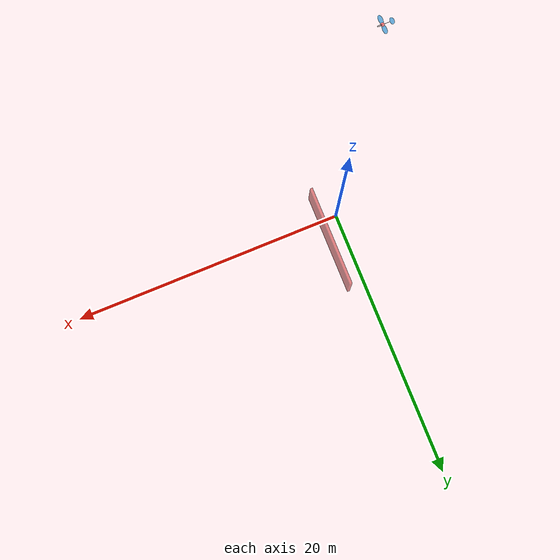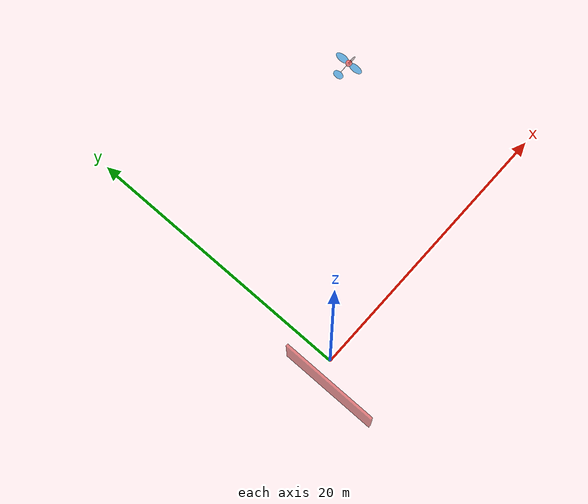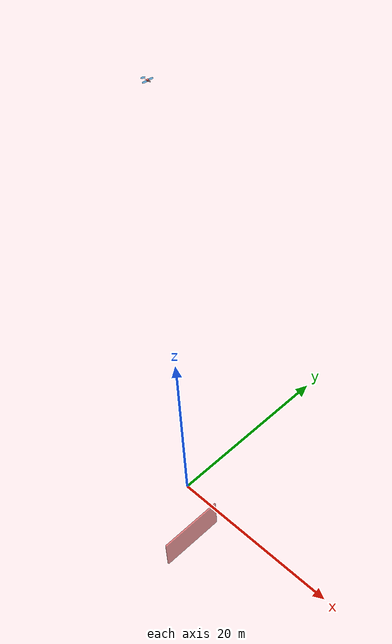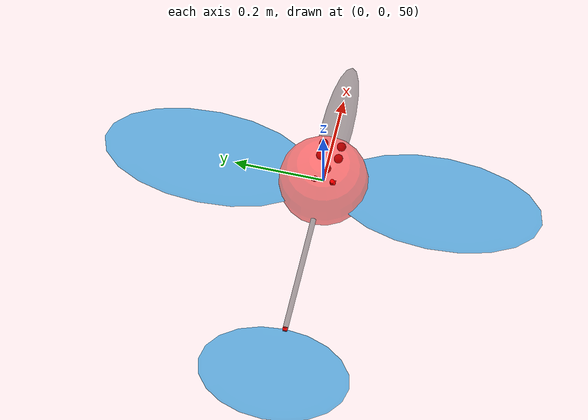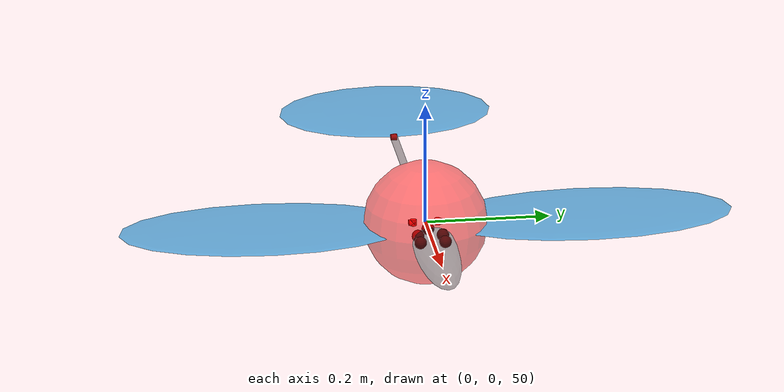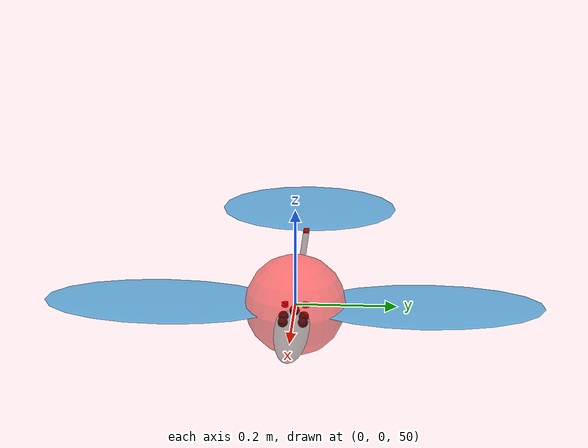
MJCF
<mujoco model="Ornithopter_UnB_Final">
    <compiler angle="degree" coordinate="local" inertiafromgeom="true"/>

    <statistic center="0 0 50" extent="2"/>

    <option timestep="0.0015" integrator="RK4" gravity="0 0 -9.81" density="1.225" viscosity="0.000018">
        <flag energy="enable"/>
    </option>

    <visual>
        <headlight ambient="0.4 0.4 0.4" diffuse="0.8 0.8 0.8" specular="0.2 0.2 0.2"/>
    </visual>

    <asset>
        <texture type="skybox" builtin="gradient" rgb1="0.53 0.81 0.92" rgb2="0.25 0.40 0.45" width="512" height="512"/>

        <material name="carbon_fiber" rgba="0.1 0.1 0.1 0.4"/>
        <material name="wing_mylar" rgba="0 0.5 0.8 0.6"/>
        <material name="joint_visual" rgba="1 0 0 1"/>
        <material name="motor_internal" rgba="0.5 0 0 1"/>
    </asset>

    <worldbody>
        <light diffuse=".5 .5 .5" pos="0 0 100" dir="0 0 -1"/>

        <body name="target" mocap="true" pos="0 0 50">
            <geom type="sphere" size="0.1" rgba="1 0 0 0.5" contype="0" conaffinity="0"/>
        </body>

        <body name="target_fut_4" mocap="true" pos="0 0 50">
            <geom type="sphere" size="0.1" rgba="1 0.5 0 0.5" contype="0" conaffinity="0"/>
        </body>

        <body name="target_fut_3" mocap="true" pos="0 0 50">
            <geom type="sphere" size="0.1" rgba="1 0.5 0 0.5" contype="0" conaffinity="0"/>
        </body>

        <body name="target_fut_2" mocap="true" pos="0 0 50">
            <geom type="sphere" size="0.1" rgba="1 0.5 0 0.5" contype="0" conaffinity="0"/>
        </body>

        <body name="target_fut_1" mocap="true" pos="0 0 50">
            <geom type="sphere" size="0.1" rgba="1 0.5 0 0.5" contype="0" conaffinity="0"/>
        </body>

        <body name="target_fut_0" mocap="true" pos="0 0 50">
            <geom type="sphere" size="0.1" rgba="1 0.5 0 0.5" contype="0" conaffinity="0"/>
        </body>

        <!-- Parede punitiva (Estilo Trackmania) -->
        <body name="obstacle_wall" mocap="true" pos="0 0 -10">
            <!-- size = metades da dimensão (Profundidade 1m, Largura 10m, Altura 4m) -->
            <geom type="box" size="0.1 4.0 2.0" rgba="0.8 0.2 0.2 0.6" contype="1" conaffinity="1"/>
        </body>

        <!-- CORPO PRINCIPAL -->
        <body name="torso" pos="0 0 50">
            <freejoint name="root"/>

            <!-- Fuselagem Principal (GeoGebra): 255g total, motores inclusos aqui -->
            <geom name="fuselagem" type="ellipsoid" fluidshape="ellipsoid" pos="0.12995 0 0" size="0.1565 0.035 0.028" mass="0.210" material="carbon_fiber"/>

            <!-- Massas dos Motores (9g cada) posicionadas internamente para ajuste de CG -->
            <geom name="m_flap_l_mass" type="sphere" pos="0.09 0.02 0" size="0.01" mass="0.009" material="motor_internal"/>
            <geom name="m_flap_r_mass" type="sphere" pos="0.09 -0.02 0" size="0.01" mass="0.009" material="motor_internal"/>
            <geom name="m_pitch_l_mass" type="sphere" pos="0.06 0.02 0" size="0.01" mass="0.009" material="motor_internal"/>
            <geom name="m_pitch_r_mass" type="sphere" pos="0.06 -0.02 0" size="0.01" mass="0.009" material="motor_internal"/>
            <geom name="m_tail_mass" type="sphere" pos="0.03 0 0" size="0.01" mass="0.009" material="motor_internal"/>

            <!-- Tubo de Cauda (4g) -->
            <geom name="tail_tube" type="cylinder" fromto="-0.02197 0 0 -0.37657 0 0" size="0.006" mass="0.004" material="carbon_fiber"/>

            <!-- ASA ESQUERDA -->
            <body name="asa_esq_flap" pos="0 0.01951 0">
                <joint name="q1_flap_esq" type="hinge" axis="1 0 0" range="-45 45" damping="0.1"/>
                <!-- Cilindro de placeholder para satisfazer mjMINVAL -->
                <geom type="cylinder" size="0.005 0.005" mass="0.0001" material="joint_visual"/>

                <body name="asa_esq_pitch" pos="0 0.00249 0">
                    <joint name="q2_pitch_esq" type="hinge" axis="0 1 0" range="-35 35" damping="0.05"/>
                    <geom type="cylinder" size="0.005 0.005" mass="0.0001" material="joint_visual" euler="90 0 0"/>

                    <body name="asa_esq">
                        <geom name="wing_l" type="ellipsoid" fluidshape="ellipsoid" pos="0 0.23625 0" size="0.1139 0.2362 0.005" mass="0.020" material="wing_mylar" fluidcoef="0.2 0.12 1.5 3.14 1.0"/>
                    </body>
                </body>
            </body>

            <!-- ASA DIREITA -->
            <body name="asa_dir_flap" pos="0 -0.01951 0">
                <joint name="q3_flap_dir" type="hinge" axis="1 0 0" range="-45 45" damping="0.1"/>
                <geom type="cylinder" size="0.005 0.005" mass="0.0001" material="joint_visual"/>

                <body name="asa_dir_pitch" pos="0 -0.00249 0">
                    <joint name="q4_pitch_dir" type="hinge" axis="0 1 0" range="-35 35" damping="0.05"/>
                    <geom type="cylinder" size="0.005 0.005" mass="0.0001" material="joint_visual" euler="90 0 0"/>

                    <body name="asa_dir">
                        <geom name="wing_r" type="ellipsoid" fluidshape="ellipsoid" pos="0 -0.23625 0" size="0.1139 0.2362 0.005" mass="0.020" material="wing_mylar" fluidcoef="0.2 0.12 1.5 3.14 1.0"/>
                    </body>
                </body>
            </body>

            <!-- CAUDA -->
            <body name="cauda_pitch" pos="-0.37657 0 0">
                <joint name="q5_pitch_tail" type="hinge" axis="0 1 0" range="-40 40" damping="0.1"/>
                <geom type="cylinder" size="0.005 0.005" mass="0.0001" material="joint_visual" euler="90 0 0"/>

                <body name="cauda">
                    <geom name="tail_geom" type="ellipsoid" fluidshape="ellipsoid" pos="-0.11333 0 0" size="0.1133 0.17 0.005" mass="0.009" material="wing_mylar" fluidcoef="0.2 0.12 1.5 3.14 1.0"/>
                </body>
            </body>
        </body>
    </worldbody>

    <actuator>
        <position name="motor_q1" joint="q1_flap_esq" kp="10" ctrllimited="true" ctrlrange="-45 45"/>
        <position name="motor_q2" joint="q2_pitch_esq" kp="5" ctrllimited="true" ctrlrange="-35 35"/>
        <position name="motor_q3" joint="q3_flap_dir" kp="10" ctrllimited="true" ctrlrange="-45 45"/>
        <position name="motor_q4" joint="q4_pitch_dir" kp="5" ctrllimited="true" ctrlrange="-35 35"/>
        <position name="motor_q5" joint="q5_pitch_tail" kp="5" ctrllimited="true" ctrlrange="-40 40"/>
    </actuator>
</mujoco>
